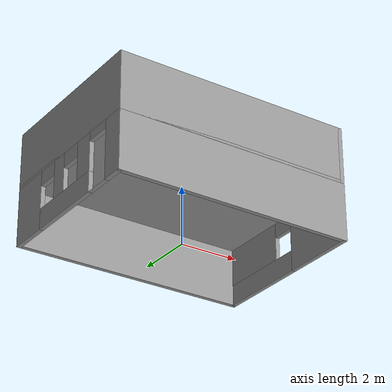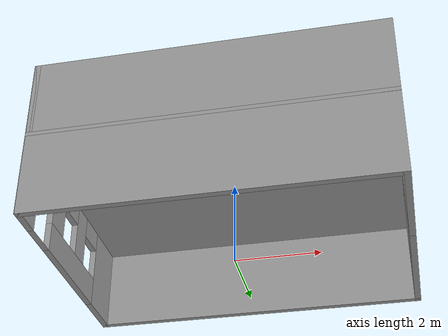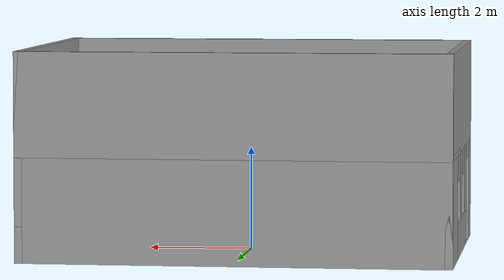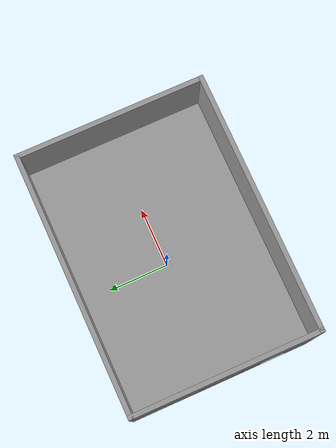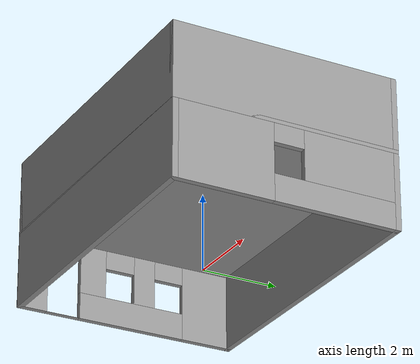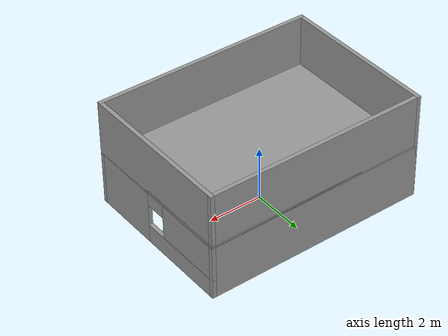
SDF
<?xml version='1.0'?>
<sdf version='1.7'>
  <model name='room_10_9'>
    <pose>-0.012242 0.006 0 0 -0 0</pose>
    <link name='Floor_0'>
      <collision name='Floor_0_Collision'>
        <geometry>
          <box>
            <size>8.2645 6 0.1</size>
          </box>
        </geometry>
        <pose>0 0 0.05 0 -0 0</pose>
      </collision>
      <visual name='Floor_0_Visual'>
        <pose>0 0 0.05 0 -0 0</pose>
        <geometry>
          <box>
            <size>8.2645 6 0.1</size>
          </box>
        </geometry>
        <material>
          <script>
            <uri>file://media/materials/scripts/gazebo.material</uri>
            <name>Gazebo/Grey</name>
          </script>
          <ambient>1 1 1 1</ambient>
        </material>
        <meta>
          <layer>1</layer>
        </meta>
      </visual>
      <pose>-8e-06 -0 2 0 -0 0</pose>
    </link>
    <link name='Wall_11'>
      <collision name='Wall_11_Collision'>
        <geometry>
          <box>
            <size>8.253 0.15 2</size>
          </box>
        </geometry>
        <pose>0 0 1 0 -0 0</pose>
      </collision>
      <visual name='Wall_11_Visual'>
        <pose>0 0 1 0 -0 0</pose>
        <geometry>
          <box>
            <size>8.253 0.15 2</size>
          </box>
        </geometry>
        <material>
          <script>
            <uri>file://media/materials/scripts/gazebo.material</uri>
            <name>Gazebo/Grey</name>
          </script>
          <ambient>1 1 1 1</ambient>
        </material>
        <meta>
          <layer>1</layer>
        </meta>
      </visual>
      <pose>0.005742 2.925 2 0 -0 0</pose>
    </link>
    <link name='Wall_12'>
      <collision name='Wall_12_Collision'>
        <geometry>
          <box>
            <size>6 0.15 2</size>
          </box>
        </geometry>
        <pose>0 0 1 0 -0 0</pose>
      </collision>
      <visual name='Wall_12_Visual'>
        <pose>0 0 1 0 -0 0</pose>
        <geometry>
          <box>
            <size>6 0.15 2</size>
          </box>
        </geometry>
        <material>
          <script>
            <uri>file://media/materials/scripts/gazebo.material</uri>
            <name>Gazebo/Grey</name>
          </script>
          <ambient>1 1 1 1</ambient>
        </material>
        <meta>
          <layer>1</layer>
        </meta>
      </visual>
      <pose>-4.05726 -0 2 0 -0 -1.5708</pose>
    </link>
    <link name='Wall_13'>
      <collision name='Wall_13_Collision'>
        <geometry>
          <box>
            <size>8.253 0.15 2</size>
          </box>
        </geometry>
        <pose>0 0 1 0 -0 0</pose>
      </collision>
      <visual name='Wall_13_Visual'>
        <pose>0 0 1 0 -0 0</pose>
        <geometry>
          <box>
            <size>8.253 0.15 2</size>
          </box>
        </geometry>
        <material>
          <script>
            <uri>file://media/materials/scripts/gazebo.material</uri>
            <name>Gazebo/Grey</name>
          </script>
          <ambient>1 1 1 1</ambient>
        </material>
        <meta>
          <layer>1</layer>
        </meta>
      </visual>
      <pose>0.005742 -2.925 2 0 -0 0</pose>
    </link>
    <link name='Wall_14'>
      <collision name='Wall_14_Collision'>
        <geometry>
          <box>
            <size>6 0.15 2</size>
          </box>
        </geometry>
        <pose>0 0 1 0 -0 0</pose>
      </collision>
      <visual name='Wall_14_Visual'>
        <pose>0 0 1 0 -0 0</pose>
        <geometry>
          <box>
            <size>6 0.15 2</size>
          </box>
        </geometry>
        <material>
          <script>
            <uri>file://media/materials/scripts/gazebo.material</uri>
            <name>Gazebo/Grey</name>
          </script>
          <ambient>1 1 1 1</ambient>
        </material>
        <meta>
          <layer>1</layer>
        </meta>
      </visual>
      <pose>4.05724 -0 2 0 -0 1.5708</pose>
    </link>
    <link name='Wall_5'>
      <collision name='Wall_5_Collision'>
        <geometry>
          <box>
            <size>8.25303 0.15 2</size>
          </box>
        </geometry>
        <pose>0 0 1 0 -0 0</pose>
      </collision>
      <visual name='Wall_5_Visual'>
        <pose>0 0 1 0 -0 0</pose>
        <geometry>
          <box>
            <size>8.25303 0.15 2</size>
          </box>
        </geometry>
        <material>
          <script>
            <uri>file://media/materials/scripts/gazebo.material</uri>
            <name>Gazebo/Grey</name>
          </script>
          <ambient>1 1 1 1</ambient>
        </material>
        <meta>
          <layer>0</layer>
        </meta>
      </visual>
      <pose>0.005742 2.925 0 0 -0 0</pose>
    </link>
    <link name='Wall_7'>
      <pose>-4.05726 -0 0 0 -0 -1.5708</pose>
      <visual name='Wall_7_Visual_0'>
        <pose>-2.27863 0 1 0 -0 0</pose>
        <geometry>
          <box>
            <size>1.44274 0.15 2</size>
          </box>
        </geometry>
        <material>
          <script>
            <uri>file://media/materials/scripts/gazebo.material</uri>
            <name>Gazebo/Grey</name>
          </script>
          <ambient>1 1 1 1</ambient>
        </material>
        <meta>
          <layer>0</layer>
        </meta>
      </visual>
      <collision name='Wall_7_Collision_0'>
        <geometry>
          <box>
            <size>1.44274 0.15 2</size>
          </box>
        </geometry>
        <pose>-2.27863 0 1 0 -0 0</pose>
      </collision>
      <visual name='Wall_7_Visual_1'>
        <pose>2.62155 0 1 0 -0 0</pose>
        <geometry>
          <box>
            <size>0.756891 0.15 2</size>
          </box>
        </geometry>
        <material>
          <script>
            <uri>file://media/materials/scripts/gazebo.material</uri>
            <name>Gazebo/Grey</name>
          </script>
          <ambient>1 1 1 1</ambient>
        </material>
        <meta>
          <layer>0</layer>
        </meta>
      </visual>
      <collision name='Wall_7_Collision_1'>
        <geometry>
          <box>
            <size>0.756891 0.15 2</size>
          </box>
        </geometry>
        <pose>2.62155 0 1 0 -0 0</pose>
      </collision>
      <visual name='Wall_7_Visual_2'>
        <pose>-0.107078 0 0.35 0 -0 0</pose>
        <geometry>
          <box>
            <size>2.90037 0.15 0.7</size>
          </box>
        </geometry>
        <material>
          <script>
            <uri>file://media/materials/scripts/gazebo.material</uri>
            <name>Gazebo/Grey</name>
          </script>
          <ambient>1 1 1 1</ambient>
        </material>
        <meta>
          <layer>0</layer>
        </meta>
      </visual>
      <collision name='Wall_7_Collision_2'>
        <geometry>
          <box>
            <size>2.90037 0.15 0.7</size>
          </box>
        </geometry>
        <pose>-0.107078 0 0.35 0 -0 0</pose>
      </collision>
      <visual name='Wall_7_Visual_3'>
        <pose>1.79311 0 0 0 -0 0</pose>
        <geometry>
          <box>
            <size>0.9 0.15 0</size>
          </box>
        </geometry>
        <material>
          <script>
            <uri>file://media/materials/scripts/gazebo.material</uri>
            <name>Gazebo/Grey</name>
          </script>
          <ambient>1 1 1 1</ambient>
        </material>
        <meta>
          <layer>0</layer>
        </meta>
      </visual>
      <collision name='Wall_7_Collision_3'>
        <geometry>
          <box>
            <size>0.9 0.15 0</size>
          </box>
        </geometry>
        <pose>1.79311 0 0 0 -0 0</pose>
      </collision>
      <visual name='Wall_7_Visual_4'>
        <pose>-0.462951 0 1.35 0 -0 0</pose>
        <geometry>
          <box>
            <size>0.588625 0.15 1.3</size>
          </box>
        </geometry>
        <material>
          <script>
            <uri>file://media/materials/scripts/gazebo.material</uri>
            <name>Gazebo/Grey</name>
          </script>
          <ambient>1 1 1 1</ambient>
        </material>
        <meta>
          <layer>0</layer>
        </meta>
      </visual>
      <collision name='Wall_7_Collision_4'>
        <geometry>
          <box>
            <size>0.588625 0.15 1.3</size>
          </box>
        </geometry>
        <pose>-0.462951 0 1.35 0 -0 0</pose>
      </collision>
      <visual name='Wall_7_Visual_5'>
        <pose>0.987235 0 1.35 0 -0 0</pose>
        <geometry>
          <box>
            <size>0.711747 0.15 1.3</size>
          </box>
        </geometry>
        <material>
          <script>
            <uri>file://media/materials/scripts/gazebo.material</uri>
            <name>Gazebo/Grey</name>
          </script>
          <ambient>1 1 1 1</ambient>
        </material>
        <meta>
          <layer>0</layer>
        </meta>
      </visual>
      <collision name='Wall_7_Collision_5'>
        <geometry>
          <box>
            <size>0.711747 0.15 1.3</size>
          </box>
        </geometry>
        <pose>0.987235 0 1.35 0 -0 0</pose>
      </collision>
      <visual name='Wall_7_Visual_6'>
        <pose>-1.15726 0 1.75 0 -0 0</pose>
        <geometry>
          <box>
            <size>0.8 0.15 0.5</size>
          </box>
        </geometry>
        <material>
          <script>
            <uri>file://media/materials/scripts/gazebo.material</uri>
            <name>Gazebo/Grey</name>
          </script>
          <ambient>1 1 1 1</ambient>
        </material>
        <meta>
          <layer>0</layer>
        </meta>
      </visual>
      <collision name='Wall_7_Collision_6'>
        <geometry>
          <box>
            <size>0.8 0.15 0.5</size>
          </box>
        </geometry>
        <pose>-1.15726 0 1.75 0 -0 0</pose>
      </collision>
      <visual name='Wall_7_Visual_7'>
        <pose>0.231361 0 1.75 0 -0 0</pose>
        <geometry>
          <box>
            <size>0.8 0.15 0.5</size>
          </box>
        </geometry>
        <material>
          <script>
            <uri>file://media/materials/scripts/gazebo.material</uri>
            <name>Gazebo/Grey</name>
          </script>
          <ambient>1 1 1 1</ambient>
        </material>
        <meta>
          <layer>0</layer>
        </meta>
      </visual>
      <collision name='Wall_7_Collision_7'>
        <geometry>
          <box>
            <size>0.8 0.15 0.5</size>
          </box>
        </geometry>
        <pose>0.231361 0 1.75 0 -0 0</pose>
      </collision>
      <visual name='Wall_7_Visual_8'>
        <pose>1.79311 0 1.85 0 -0 0</pose>
        <geometry>
          <box>
            <size>0.9 0.15 0.3</size>
          </box>
        </geometry>
        <material>
          <script>
            <uri>file://media/materials/scripts/gazebo.material</uri>
            <name>Gazebo/Grey</name>
          </script>
          <ambient>1 1 1 1</ambient>
        </material>
        <meta>
          <layer>0</layer>
        </meta>
      </visual>
      <collision name='Wall_7_Collision_8'>
        <geometry>
          <box>
            <size>0.9 0.15 0.3</size>
          </box>
        </geometry>
        <pose>1.79311 0 1.85 0 -0 0</pose>
      </collision>
    </link>
    <link name='Wall_8'>
      <collision name='Wall_8_Collision'>
        <geometry>
          <box>
            <size>8.25303 0.15 2</size>
          </box>
        </geometry>
        <pose>0 0 1 0 -0 0</pose>
      </collision>
      <visual name='Wall_8_Visual'>
        <pose>0 0 1 0 -0 0</pose>
        <geometry>
          <box>
            <size>8.25303 0.15 2</size>
          </box>
        </geometry>
        <material>
          <script>
            <uri>file://media/materials/scripts/gazebo.material</uri>
            <name>Gazebo/Grey</name>
          </script>
          <ambient>1 1 1 1</ambient>
        </material>
        <meta>
          <layer>0</layer>
        </meta>
      </visual>
      <pose>0.005742 -2.925 0 0 -0 0</pose>
    </link>
    <link name='Wall_9'>
      <pose>4.05724 -0 0 0 -0 1.5708</pose>
      <visual name='Wall_9_Visual_0'>
        <pose>-1.69004 0 1 0 -0 0</pose>
        <geometry>
          <box>
            <size>2.61991 0.15 2</size>
          </box>
        </geometry>
        <material>
          <script>
            <uri>file://media/materials/scripts/gazebo.material</uri>
            <name>Gazebo/Grey</name>
          </script>
          <ambient>1 1 1 1</ambient>
        </material>
        <meta>
          <layer>0</layer>
        </meta>
      </visual>
      <collision name='Wall_9_Collision_0'>
        <geometry>
          <box>
            <size>2.61991 0.15 2</size>
          </box>
        </geometry>
        <pose>-1.69004 0 1 0 -0 0</pose>
      </collision>
      <visual name='Wall_9_Visual_1'>
        <pose>1.30996 0 0.35 0 -0 0</pose>
        <geometry>
          <box>
            <size>3.38009 0.15 0.7</size>
          </box>
        </geometry>
        <material>
          <script>
            <uri>file://media/materials/scripts/gazebo.material</uri>
            <name>Gazebo/Grey</name>
          </script>
          <ambient>1 1 1 1</ambient>
        </material>
        <meta>
          <layer>0</layer>
        </meta>
      </visual>
      <collision name='Wall_9_Collision_1'>
        <geometry>
          <box>
            <size>3.38009 0.15 0.7</size>
          </box>
        </geometry>
        <pose>1.30996 0 0.35 0 -0 0</pose>
      </collision>
      <visual name='Wall_9_Visual_2'>
        <pose>1.70996 0 1.35 0 -0 0</pose>
        <geometry>
          <box>
            <size>2.58009 0.15 1.3</size>
          </box>
        </geometry>
        <material>
          <script>
            <uri>file://media/materials/scripts/gazebo.material</uri>
            <name>Gazebo/Grey</name>
          </script>
          <ambient>1 1 1 1</ambient>
        </material>
        <meta>
          <layer>0</layer>
        </meta>
      </visual>
      <collision name='Wall_9_Collision_2'>
        <geometry>
          <box>
            <size>2.58009 0.15 1.3</size>
          </box>
        </geometry>
        <pose>1.70996 0 1.35 0 -0 0</pose>
      </collision>
      <visual name='Wall_9_Visual_3'>
        <pose>0.019914 0 1.75 0 -0 0</pose>
        <geometry>
          <box>
            <size>0.8 0.15 0.5</size>
          </box>
        </geometry>
        <material>
          <script>
            <uri>file://media/materials/scripts/gazebo.material</uri>
            <name>Gazebo/Grey</name>
          </script>
          <ambient>1 1 1 1</ambient>
        </material>
        <meta>
          <layer>0</layer>
        </meta>
      </visual>
      <collision name='Wall_9_Collision_3'>
        <geometry>
          <box>
            <size>0.8 0.15 0.5</size>
          </box>
        </geometry>
        <pose>0.019914 0 1.75 0 -0 0</pose>
      </collision>
    </link>
    <static>1</static>
  </model>
</sdf>
